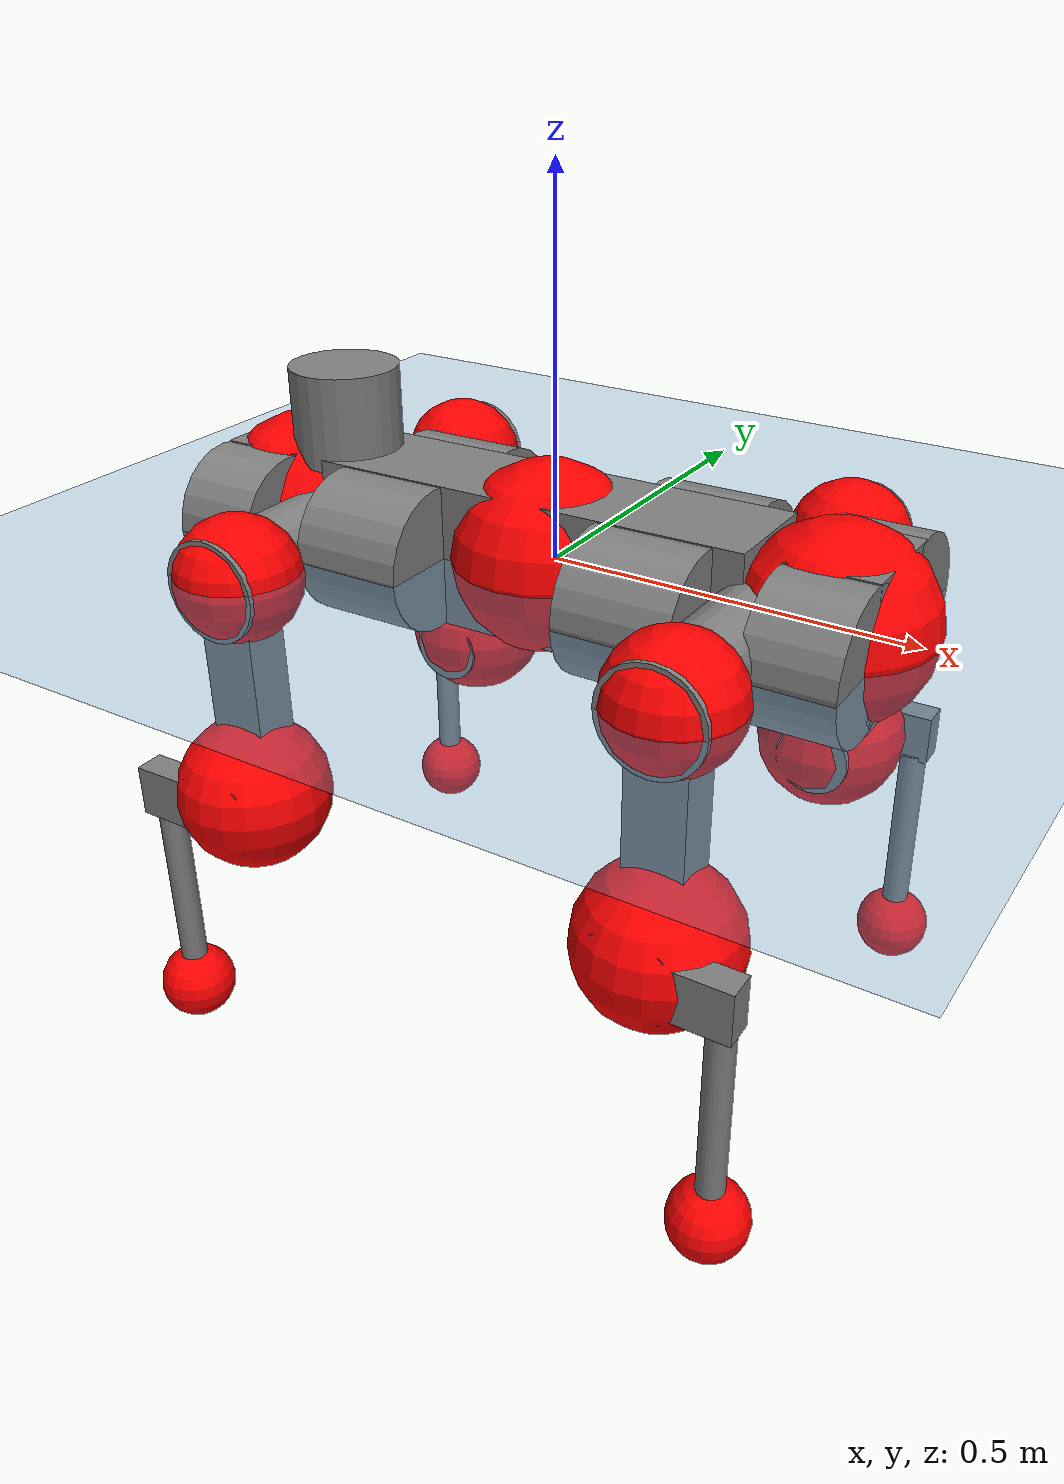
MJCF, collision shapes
<mujoco model="anymal_c">
  <compiler angle="radian" assetdir="assets" balanceinertia="true" inertiafromgeom="false"/>

  <option timestep="0.005" density="1.2" viscosity="2e-05"/>

  <size nkey="1"/>

  <visual>
    <quality shadowsize="8192"/>
    <map shadowclip="0.5"/>
  </visual>

  <default>
    <default class="/">
      <material specular="0" shininess="0.25"/>
      <geom contype="0" conaffinity="0" group="1" solref="-1000 -80"/>
      <site size="0.01 0.005 0.005" group="5"/>
      <general forcelimited="true" forcerange="-80 80" biastype="affine" gainprm="80" biasprm="0 -80 -2"/>
      <default class="anymal_c">
        <joint armature="0.01" damping="0.01" frictionloss="0.1"/>
        <default class="visual">
          <geom type="mesh" group="2"/>
          <default class="visual_zflip"/>
        </default>
        <default class="collision">
          <geom type="cylinder" group="3"/>
          <default class="foot">
            <geom size="0.03 0 0" type="sphere" condim="6" priority="1" friction="0.8 0.02 0.01" solimp="0.015 1 0.03"/>
          </default>
        </default>
      </default>
      <default class="reward_collision_sphere">
        <geom group="5" rgba="1 0 0 1"/>
      </default>
    </default>
  </default>

  <asset>
    <texture type="skybox" colorspace="auto" name="//unnamed_texture_0" builtin="gradient" rgb1="0.95 0.95 0.95" rgb2="0.95 0.95 0.95" width="100" height="600"/>
    <texture type="2d" colorspace="auto" name="texplane" builtin="checker" rgb1="0.345 0.575 0.748" rgb2="0.345 0.575 0.748" markrgb="1 1 1" width="512" height="512"/>
    <texture type="2d" colorspace="linear" name="base" file="base.png"/>
    <texture type="2d" colorspace="linear" name="top_shell" file="top_shell.png"/>
    <texture type="2d" colorspace="linear" name="bottom_shell" file="bottom_shell.png"/>
    <texture type="2d" colorspace="linear" name="remote" file="remote.png"/>
    <texture type="2d" colorspace="linear" name="hatch" file="hatch.png"/>
    <texture type="2d" colorspace="linear" name="handle" file="handle.png"/>
    <texture type="2d" colorspace="linear" name="face" file="face.png"/>
    <texture type="2d" colorspace="linear" name="battery" file="battery.png"/>
    <texture type="2d" colorspace="linear" name="lidar_cage" file="lidar_cage.png"/>
    <texture type="2d" colorspace="linear" name="depth_camera" file="depth_camera.png"/>
    <texture type="2d" colorspace="linear" name="wide_angle_camera" file="wide_angle_camera.png"/>
    <texture type="2d" colorspace="linear" name="lidar" file="lidar.png"/>
    <texture type="2d" colorspace="linear" name="drive" file="drive.png"/>
    <texture type="2d" colorspace="linear" name="hip_l" file="hip_l.png"/>
    <texture type="2d" colorspace="linear" name="shank_l" file="shank_l.png"/>
    <texture type="2d" colorspace="linear" name="foot" file="foot.png"/>
    <texture type="2d" colorspace="linear" name="thigh" file="thigh.png"/>
    <texture type="2d" colorspace="linear" name="shank_r" file="shank_r.png"/>
    <texture type="2d" colorspace="linear" name="hip_r" file="hip_r.png"/>
    <material name="MatPlane" class="/" texture="texplane" texuniform="true" texrepeat="2 2" specular="0.9" shininess="0.5"/>
    <material name="black_plastic" class="/" rgba="0.007 0.007 0.007 1"/>
    <material name="green" class="/" rgba="0.052 0.178 0.033 1"/>
    <material name="red" class="/" rgba="0.178 0.006 0.005 1"/>
    <material name="yellow" class="/" rgba="0.178 0.119 0.006 1"/>
    <material name="lwl" class="/" rgba="0.8 0.8 0.8 1"/>
    <material name="base" class="/" texture="base"/>
    <material name="top_shell" class="/" texture="top_shell"/>
    <material name="bottom_shell" class="/" texture="bottom_shell"/>
    <material name="hip_l" class="/" texture="hip_l"/>
    <material name="thigh" class="/" texture="thigh"/>
    <material name="shank_l" class="/" texture="shank_l"/>
    <material name="foot" class="/" texture="foot"/>
    <material name="hip_r" class="/" texture="hip_r"/>
    <material name="shank" class="/" texture="shank_r"/>
    <material name="hatch" class="/" texture="hatch"/>
    <material name="remote" class="/" texture="remote"/>
    <material name="handle" class="/" texture="handle"/>
    <material name="face" class="/" texture="face"/>
    <material name="depth_camera" class="/" texture="depth_camera"/>
    <material name="wide_angle_camera" class="/" texture="wide_angle_camera"/>
    <material name="battery" class="/" texture="battery"/>
    <material name="lidar_cage" class="/" texture="lidar_cage"/>
    <material name="lidar" class="/" texture="lidar"/>
    <material name="drive" class="/" texture="drive"/>
    <mesh name="base_0" class="/" file="base_0.obj"/>
    <mesh name="base_1" class="/" file="base_1.obj"/>
    <mesh name="base_2" class="/" file="base_2.obj"/>
    <mesh name="base_3" class="/" file="base_3.obj"/>
    <mesh name="base_4" class="/" file="base_4.obj"/>
    <mesh name="base_5" class="/" file="base_5.obj"/>
    <mesh name="top_shell" class="/" file="top_shell.obj"/>
    <mesh name="bottom_shell" class="/" file="bottom_shell.obj"/>
    <mesh name="remote" class="/" file="remote.obj"/>
    <mesh name="handle" class="/" file="handle.obj"/>
    <mesh name="face" class="/" file="face.obj"/>
    <mesh name="wide_angle_camera" class="/" file="wide_angle_camera.obj"/>
    <mesh name="depth_camera" class="/" file="depth_camera.obj"/>
    <mesh name="battery" class="/" file="battery.obj"/>
    <mesh name="lidar_cage" class="/" file="lidar_cage.obj"/>
    <mesh name="lidar" class="/" file="lidar.obj"/>
    <mesh name="drive" class="/" file="drive.obj"/>
    <mesh name="hip_l" class="/" file="hip_l.obj"/>
    <mesh name="thigh" class="/" file="thigh.obj"/>
    <mesh name="shank_l" class="/" file="shank_l.obj"/>
    <mesh name="foot" class="/" file="foot.obj"/>
    <mesh name="hip_r" class="/" file="hip_r.obj"/>
    <mesh name="hatch" class="/" file="hatch.obj"/>
    <mesh name="shank_r" class="/" file="shank_r.obj"/>
  </asset>

  <worldbody>
    <geom name="floor" class="/" size="100 100 0.125" type="plane" group="0" material="MatPlane"/>
    <light name="toplight_shadow" class="/" pos="0 0 5" dir="0.0990148 0.0990148 -0.990148" type="directional" ambient="0.04 0.04 0.04" diffuse="0.55 0.55 0.55" specular="0.12 0.12 0.12"/>
    <light name="toplight_fill" class="/" pos="0 0 5" dir="0.0990148 0.0990148 -0.990148" type="directional" castshadow="false" ambient="0.04 0.04 0.04" diffuse="0.3 0.3 0.3" specular="0.08 0.08 0.08"/>
    <body name="trunk" childclass="anymal_c" pos="-0.00968559 -0.00203978 0.00229353" quat="0.999991 0.000937407 -0.00275108 0.00293378">
      <inertial pos="0.0111878 -0.00209857 0.0519269" quat="0.496023 0.504246 0.498014 0.501676" mass="26.2495" diaginertia="0.344449 1.93799 0.304307"/>
      <joint name="//unnamed_joint_0" type="free" armature="0" damping="0" frictionloss="0"/>
      <geom name="//unnamed_geom_1" class="visual" material="green" mesh="base_0"/>
      <geom name="//unnamed_geom_2" class="visual" material="yellow" mesh="base_1"/>
      <geom name="//unnamed_geom_3" class="visual" material="red" mesh="base_2"/>
      <geom name="//unnamed_geom_4" class="visual" material="black_plastic" mesh="base_3"/>
      <geom name="//unnamed_geom_5" class="visual" material="lwl" mesh="base_4"/>
      <geom name="//unnamed_geom_6" class="visual" material="base" mesh="base_5"/>
      <geom name="trunk_1" class="collision" size="0.311645 0.0752247 0.0967175" type="box"/>
      <geom name="trunk_2" class="collision" size="0.0967175 0.0779113" pos="0.193189 0.088134 0" quat="0.707107 0 0.707107 0"/>
      <geom name="trunk_3" class="collision" size="0.0967175 0.0779113" pos="-0.193189 0.088134 0" quat="0.707107 0 0.707107 0"/>
      <geom name="trunk_4" class="collision" size="0.0967175 0.0779113" pos="0.193189 -0.088134 0" quat="0.707107 0 0.707107 0"/>
      <geom name="trunk_5" class="collision" size="0.0967175 0.0779113" pos="-0.193189 -0.088134 0" quat="0.707107 0 0.707107 0"/>
      <geom name="//unnamed_geom_12" class="visual" material="top_shell" mesh="top_shell"/>
      <geom name="//unnamed_geom_13" class="visual" material="bottom_shell" mesh="bottom_shell"/>
      <geom name="//unnamed_geom_14" class="visual" material="remote" mesh="remote"/>
      <geom name="//unnamed_geom_15" class="visual" material="handle" mesh="handle"/>
      <geom name="//unnamed_geom_16" class="visual" pos="0.36817 0 0" quat="1 0 0 0" material="face" mesh="face"/>
      <geom name="trunk_6" class="collision" size="0.0591051 0.0752247 0.0967175" pos="0.417023 0 0" type="box"/>
      <geom name="//unnamed_geom_18" class="collision" size="0.0967175 0.0591051" pos="0.417023 0.088134 0" quat="0.707107 0 0.707107 0"/>
      <geom name="//unnamed_geom_19" class="collision" size="0.0967175 0.0591051" pos="0.417023 -0.088134 0" quat="0.707107 0 0.707107 0"/>
      <geom name="//unnamed_geom_20" class="visual" pos="0.410058 0 -0.0328696" quat="0.965926 0 0.258819 0" material="depth_camera" mesh="depth_camera"/>
      <geom name="//unnamed_geom_21" class="visual" pos="0.45566 0 0.0161172" material="wide_angle_camera" mesh="wide_angle_camera"/>
      <geom name="//unnamed_geom_22" class="visual_zflip" pos="-0.36817 0 0" quat="0 0 0 1" material="face" mesh="face"/>
      <geom name="trunk_7" class="collision" size="0.0591051 0.0752247 0.0967175" pos="-0.417023 0 0" quat="0 0 0 1" type="box"/>
      <geom name="//unnamed_geom_24" class="collision" size="0.0967175 0.0591051" pos="-0.417023 -0.088134 0" quat="0 -0.707107 0 0.707107"/>
      <geom name="//unnamed_geom_25" class="collision" size="0.0967175 0.0591051" pos="-0.417023 0.088134 0" quat="0 -0.707107 0 0.707107"/>
      <geom name="//unnamed_geom_26" class="visual" pos="-0.410058 0 -0.0328696" quat="0 -0.258819 0 0.965926" material="depth_camera" mesh="depth_camera"/>
      <geom name="//unnamed_geom_27" class="visual_zflip" pos="-0.45566 0 0.0161172" quat="0 0 0 1" material="wide_angle_camera" mesh="wide_angle_camera"/>
      <geom name="//unnamed_geom_28" class="visual" material="battery" mesh="battery"/>
      <geom name="//unnamed_geom_29" class="visual" pos="0 0.101141 0.0298443" quat="0.683013 -0.183013 0.183013 0.683013" material="depth_camera" mesh="depth_camera"/>
      <geom name="//unnamed_geom_30" class="visual" pos="0 -0.101141 0.0298443" quat="0.683013 0.183013 0.183013 -0.683013" material="depth_camera" mesh="depth_camera"/>
      <geom name="//unnamed_geom_31" class="visual" pos="-0.323315 0 0.0791325" quat="1 0 0 0" material="lidar_cage" mesh="lidar_cage"/>
      <geom name="trunk_8" class="collision" size="0.0752247 0.0644783" pos="-0.323315 0 0.14373"/>
      <geom name="//unnamed_geom_33" class="visual" pos="-0.323315 0.000145689 0.153097" quat="0.707107 0 0 -0.707107" material="lidar" mesh="lidar"/>
      <geom name="//unnamed_geom_34" class="visual" pos="0.266379 0.130877 3.14684e-09" quat="0.258819 0.965926 0 0" material="drive" mesh="drive"/>
      <geom name="//unnamed_geom_35" class="visual" pos="0.266379 -0.130877 -3.14684e-09" quat="0.258819 -0.965926 0 0" material="drive" mesh="drive"/>
      <geom name="//unnamed_geom_36" class="visual" pos="-0.266379 0.130877 -3.14684e-09" quat="0 0 0.965926 -0.258819" material="drive" mesh="drive"/>
      <geom name="//unnamed_geom_37" class="visual" pos="-0.266379 -0.130877 3.14684e-09" quat="0 0 -0.965926 -0.258819" material="drive" mesh="drive"/>
      <geom name="//unnamed_geom_38" class="visual" pos="0.103034 0 0.0785942" quat="1 0 0 0" material="hatch" mesh="hatch"/>
      <geom name="//unnamed_geom_39" class="reward_collision_sphere" size="0.128957"/>
      <geom name="//unnamed_geom_40" class="reward_collision_sphere" size="0.128957" pos="0.399702 0 0"/>
      <geom name="//unnamed_geom_41" class="reward_collision_sphere" size="0.128957" pos="-0.399702 0 0"/>
      <site name="imu" pos="0.210847 -0.00522129 0.0107069" size="0.0107464"/>
      <camera name="track" pos="0 -2.51811 0" quat="0.707107 0.707107 0 0" mode="trackcom"/>
      <camera name="ego_camera" pos="0.399702 0 -0.0430653" quat="-0.5 -0.5 0.5 0.5"/>
      <body name="LF_HIP" pos="0.266594 0.13123 -0.00173551" quat="0.257996 0.966146 -0.000127669 0.000620055">
        <inertial pos="0.051254 -0.0138781 -0.0106223" quat="-0.127291 0.70709 -0.127006 0.683878" mass="3.58626" diaginertia="0.00287161 0.0151665 0.00474656"/>
        <joint name="LF_HAA" pos="0 0 0" axis="0.998891 -0.0374988 -0.0284753" stiffness="0.00288546" range="-0.903781 0.449727" armature="0.0111179" damping="0" frictionloss="0.106168"/>
        <geom name="//unnamed_geom_42" class="visual" pos="0 0.000185114 -3.04049e-05" quat="0.258819 -0.965926 0 0" material="hip_l" mesh="hip_l"/>
        <geom name="//unnamed_geom_43" class="visual" pos="0.0532048 -0.0692867 -0.0386533" quat="0.183013 -0.683013 0.683013 0.183013" material="drive" mesh="drive"/>
        <geom name="//unnamed_geom_44" class="collision" size="0.053732 0.0752247" pos="0.0532048 -0.0150581 -0.00743415" quat="-0.353553 -0.612372 0.612372 -0.353553"/>
        <body name="LF_THIGH" pos="0.0506551 -0.0912088 -0.0484032" quat="0.181619 -0.681024 0.685473 0.182615">
          <inertial pos="0.0222633 0.00431087 -0.256447" quat="0.993188 -0.00523465 -0.0796796 0.0848612" mass="3.95821" diaginertia="0.0172732 0.103437 0.00564102"/>
          <joint name="LF_HFE" pos="0 0 0" axis="0.999995 0.00238755 -0.00193608" stiffness="0.0490969" range="-3.18198 3.14952" armature="0.0116955" damping="0.0145048" frictionloss="0.111652"/>
          <geom name="//unnamed_geom_45" class="visual" pos="-0.00737807 -1.16261e-05 0" quat="0.707107 0 0 -0.707107" material="thigh" mesh="thigh"/>
          <geom name="//unnamed_geom_46" class="collision" size="0.0698515 0.0429856" pos="0.0355291 0 0" quat="0.5 0.5 -0.5 -0.5"/>
          <geom name="//unnamed_geom_47" class="collision" size="0.040299 0.0322392 0.151862" pos="0.0266468 0 -0.152143" quat="0.707107 0 0 -0.707107" type="box"/>
          <geom name="//unnamed_geom_48" class="visual" pos="0.0890892 0 -0.30684" quat="1 0 0 0" material="drive" mesh="drive"/>
          <geom name="//unnamed_geom_49" class="collision" size="0.053732 0.0752247" pos="0.0269133 0 -0.30684" quat="0.707107 0 0.707107 0"/>
          <geom name="//unnamed_geom_50" class="reward_collision_sphere" size="0.0859711" pos="0.0222057 0 0"/>
          <body name="LF_SHANK" pos="0.0914733 0.00817389 -0.310186" quat="0.999998 -0.000820192 0.000340304 0.00180965">
            <inertial pos="0.0113469 -0.0776473 -0.0914364" quat="0.99221 -0.121245 -0.00299882 -0.0284444" mass="0.71694" diaginertia="0.00513936 0.0242018 0.00141288"/>
            <joint name="LF_KFE" pos="0 0 0" axis="0.999995 0.00270348 -0.00164369" range="-2.97825 3.17971" armature="0.00940509" damping="0.039791" frictionloss="0.0918863"/>
            <geom name="//unnamed_geom_51" class="visual" pos="-0.00240583 -0.012828 0" quat="0.707107 0 0 -0.707107" material="shank_l" mesh="shank_l"/>
            <geom name="LF_kfe_act" class="collision" size="0.0644783 0.0214928" pos="0.0177645 0 0" quat="0.5 0.5 -0.5 -0.5"/>
            <geom name="//unnamed_geom_53" class="collision" size="0.0617907 0.0362691 0.0204181" pos="0.0177645 -0.0723945 0" quat="0.5 0.5 -0.5 -0.5" type="box"/>
            <geom name="//unnamed_geom_54" class="visual" pos="0.0115919 -0.114868 -0.36387" quat="0.382683 0 0 -0.92388" material="foot" mesh="foot"/>
            <geom name="LF_calf" class="collision" size="0.0188062 0.151795" pos="0.0115914 -0.110734 -0.181935" quat="0.707107 0 0 -0.707107"/>
            <geom name="LF_foot" class="foot" size="0.0202943" pos="0.0115914 -0.110734 -0.339645" quat="0.707107 0 0 -0.707107"/>
            <geom name="//unnamed_geom_57" class="reward_collision_sphere" size="0.107464" pos="-0.0444113 0 0"/>
            <geom name="//unnamed_geom_58" class="reward_collision_sphere" size="0.053732" pos="0.0115914 -0.110734 -0.339645"/>
            <site name="LF_foot" class="foot" pos="0.0115914 -0.110734 -0.339645" quat="0.707107 0 0 -0.707107" size="0.0107464"/>
          </body>
        </body>
      </body>
      <body name="RF_HIP" pos="0.268539 -0.131749 0.0083194" quat="0.257127 -0.966375 0.000832232 0.0022094">
        <inertial pos="0.047604 0.0267089 -0.00889784" quat="0.16061 0.687335 0.140632 0.694261" mass="3.50578" diaginertia="0.00361008 0.0161797 0.00522619"/>
        <joint name="RF_HAA" pos="0 0 0" axis="0.999884 -0.0147601 0.00367905" range="-0.504026 0.709816" armature="0.0107197" damping="0.0218494" frictionloss="0.144552"/>
        <geom name="//unnamed_geom_59" class="visual" pos="0 -0.000185113 -3.04048e-05" quat="0.258819 0.965926 0 0" material="hip_r" mesh="hip_r"/>
        <geom name="//unnamed_geom_60" class="visual" pos="0.0532048 0.0692867 -0.0386533" quat="0.183013 0.683013 0.683013 -0.183013" material="drive" mesh="drive"/>
        <geom name="//unnamed_geom_61" class="collision" size="0.053732 0.0752247" pos="0.0532048 0.0150581 -0.00743415" quat="-0.353553 0.612372 0.612372 0.353553"/>
        <body name="RF_THIGH" pos="0.0536892 0.100959 -0.0448854" quat="0.182763 0.683366 0.683019 -0.181917">
          <inertial pos="0.0241177 0.0057793 -0.266381" quat="0.993478 0.0125507 -0.0678881 0.0907505" mass="3.72947" diaginertia="0.0168042 0.0980587 0.00571772"/>
          <joint name="RF_HFE" pos="0 0 0" axis="0.999973 -0.00455699 -0.00570382" stiffness="0.0176524" range="-3.17941 3.01415" armature="0.0111658" damping="0.00724466" frictionloss="0.0971407"/>
          <geom name="//unnamed_geom_62" class="visual" pos="-0.00737807 -1.16261e-05 0" quat="0.707107 0 0 -0.707107" material="thigh" mesh="thigh"/>
          <geom name="//unnamed_geom_63" class="collision" size="0.0698515 0.0429856" pos="0.0355291 0 0" quat="0.5 0.5 0.5 0.5"/>
          <geom name="//unnamed_geom_64" class="collision" size="0.040299 0.0322392 0.151862" pos="0.0266468 0 -0.152143" quat="0.707107 0 0 0.707107" type="box"/>
          <geom name="//unnamed_geom_65" class="visual" pos="0.0890892 0 -0.30684" quat="1 0 0 0" material="drive" mesh="drive"/>
          <geom name="//unnamed_geom_66" class="collision" size="0.053732 0.0752247" pos="0.0269133 0 -0.30684" quat="0.707107 0 0.707107 0"/>
          <geom name="//unnamed_geom_67" class="reward_collision_sphere" size="0.0859711" pos="0.0222057 0 0"/>
          <body name="RF_SHANK" pos="0.0896042 0.0062491 -0.306491" quat="1 -5.32577e-06 1.4164e-05 5.16845e-05">
            <inertial pos="0.00456856 0.0791639 -0.0853513" quat="0.990163 0.134419 0.0320562 0.0219315" mass="0.707608" diaginertia="0.00562384 0.0289558 0.00171319"/>
            <joint name="RF_KFE" pos="0 0 0" axis="0.999056 -0.032536 0.0287733" stiffness="0.0345198" range="-3.0817 3.03912" armature="0.0110316" damping="0" frictionloss="0.115154"/>
            <geom name="//unnamed_geom_68" class="visual" pos="-0.00240581 0.012828 0" quat="0.707107 0 0 0.707107" material="shank" mesh="shank_r"/>
            <geom name="RF_kfe_act" class="collision" size="0.0644783 0.0214928" pos="0.0177645 0 0" quat="0.5 0.5 0.5 0.5"/>
            <geom name="//unnamed_geom_70" class="collision" size="0.0617907 0.0362691 0.0204181" pos="0.0177645 0.0723945 0" quat="0.5 0.5 0.5 0.5" type="box"/>
            <geom name="//unnamed_geom_71" class="visual" pos="0.0115908 0.114868 -0.36387" quat="0.382683 0 0 0.92388" material="foot" mesh="foot"/>
            <geom name="RF_calf" class="collision" size="0.0188062 0.151795" pos="0.0115914 0.110734 -0.181935" quat="0.707107 0 0 0.707107"/>
            <geom name="RF_foot" class="foot" size="0.0317783" pos="0.0115914 0.110734 -0.339645" quat="0.707107 0 0 0.707107"/>
            <geom name="//unnamed_geom_74" class="reward_collision_sphere" size="0.107464" pos="-0.0444113 0 0"/>
            <geom name="//unnamed_geom_75" class="reward_collision_sphere" size="0.053732" pos="0.0115914 0.110734 -0.339645"/>
            <site name="RF_foot" class="foot" pos="0.0115914 0.110734 -0.339645" quat="0.707107 0 0 0.707107" size="0.0107464"/>
          </body>
        </body>
      </body>
      <body name="LH_HIP" pos="-0.266302 0.131646 0.00543394" quat="-0.000173402 3.94645e-05 0.965751 -0.259472">
        <inertial pos="0.0492987 0.010482 -0.00351139" quat="0.121664 0.648167 0.155034 0.735555" mass="3.11862" diaginertia="0.00335851 0.015419 0.00433718"/>
        <joint name="LH_HAA" pos="0 0 0" axis="0.999992 0.00354816 0.0016287" range="-0.527271 0.794211" armature="0.0139258" damping="0.00727877" frictionloss="0.0666305"/>
        <geom name="//unnamed_geom_76" class="visual" pos="0 -0.000185113 -3.04048e-05" quat="-0.258819 -0.965926 0 0" material="hip_r" mesh="hip_r"/>
        <geom name="//unnamed_geom_77" class="visual" pos="0.0532048 0.0692867 -0.0386533" quat="0.183013 0.683013 0.683013 -0.183013" material="drive" mesh="drive"/>
        <geom name="//unnamed_geom_78" class="collision" size="0.053732 0.0752247" pos="0.0532048 0.0150581 -0.00743415" quat="-0.353553 0.612372 0.612372 0.353553"/>
        <body name="LH_THIGH" pos="0.0532294 0.0986603 -0.0526254" quat="0.183324 0.683312 0.682888 -0.182048">
          <inertial pos="0.0267922 0.000330625 -0.263075" quat="0.992535 -0.00275646 -0.0797992 0.0921931" mass="3.39696" diaginertia="0.0171639 0.0964607 0.00573108"/>
          <joint name="LH_HFE" pos="0 0 0" axis="0.999814 -0.00643244 -0.018194" range="-3.10306 3.18101" armature="0.0079248" damping="0.0229268" frictionloss="0.105911"/>
          <geom name="//unnamed_geom_79" class="visual" pos="-0.00737807 -1.16261e-05 0" quat="0.707107 0 0 -0.707107" material="thigh" mesh="thigh"/>
          <geom name="//unnamed_geom_80" class="collision" size="0.0698515 0.0429856" pos="0.0355291 0 0" quat="0.5 0.5 -0.5 -0.5"/>
          <geom name="//unnamed_geom_81" class="collision" size="0.040299 0.0322392 0.151862" pos="0.0266468 0 -0.152143" quat="0.707107 0 0 -0.707107" type="box"/>
          <geom name="//unnamed_geom_82" class="visual" pos="0.0890892 0 -0.30684" quat="1 0 0 0" material="drive" mesh="drive"/>
          <geom name="//unnamed_geom_83" class="collision" size="0.053732 0.0752247" pos="0.0269133 0 -0.30684" quat="0.707107 0 0.707107 0"/>
          <geom name="//unnamed_geom_84" class="reward_collision_sphere" size="0.0859711" pos="0.0222057 0 0"/>
          <body name="LH_SHANK" pos="0.0898239 -0.000267452 -0.298604" quat="1 -0.000206622 -0.000163778 0.000267573">
            <inertial pos="0.00565272 0.0678549 -0.0848757" quat="0.992194 0.118167 0.000746755 0.0398275" mass="0.721908" diaginertia="0.00579708 0.0297385 0.00179604"/>
            <joint name="LH_KFE" pos="0 0 0" axis="0.999981 0.00037577 -0.00617899" stiffness="0.0478662" range="-3.13685 3.09997" armature="0.0091179" damping="0.0277509" frictionloss="0.0592686"/>
            <geom name="//unnamed_geom_85" class="visual" pos="-0.00240581 0.012828 0" quat="-0.707107 0 0 -0.707107" material="shank" mesh="shank_r"/>
            <geom name="LH_kfe_act" class="collision" size="0.0644783 0.0214928" pos="0.0177645 0 0" quat="0.5 0.5 -0.5 -0.5"/>
            <geom name="//unnamed_geom_87" class="collision" size="0.0617907 0.0362691 0.0204181" pos="0.0177645 0.0723945 0" quat="0.5 0.5 -0.5 -0.5" type="box"/>
            <geom name="//unnamed_geom_88" class="visual" pos="0.0115908 0.114868 -0.36387" quat="-0.382683 0 0 -0.92388" material="foot" mesh="foot"/>
            <geom name="LH_calf" class="collision" size="0.0188062 0.151795" pos="0.0115914 0.110734 -0.181935" quat="0.707107 0 0 -0.707107"/>
            <geom name="LH_foot" class="foot" size="0.035702" pos="0.0115914 0.110734 -0.339645" quat="0.707107 0 0 -0.707107"/>
            <geom name="//unnamed_geom_91" class="reward_collision_sphere" size="0.107464" pos="-0.0444113 0 0"/>
            <geom name="//unnamed_geom_92" class="reward_collision_sphere" size="0.053732" pos="0.0115914 0.110734 -0.339645"/>
            <site name="LH_foot" class="foot" pos="0.0115914 0.110734 -0.339645" quat="0.707107 0 0 -0.707107" size="0.0107464"/>
          </body>
        </body>
      </body>
      <body name="RH_HIP" pos="-0.267134 -0.127926 0.00134051" quat="-0.00398778 0.00118525 -0.966256 -0.257551">
        <inertial pos="0.0412714 -0.0247284 6.66048e-06" quat="-0.113763 0.699396 -0.126486 0.694193" mass="3.41827" diaginertia="0.00317308 0.0151735 0.00462923"/>
        <joint name="RH_HAA" pos="0 0 0" axis="0.998894 -0.0172869 0.0437176" range="-0.737836 0.523979" armature="0.0120944" damping="0.00709311" frictionloss="0.113891"/>
        <geom name="//unnamed_geom_93" class="visual" pos="0 0.000185114 -3.04049e-05" quat="-0.258819 0.965926 0 0" material="hip_l" mesh="hip_l"/>
        <geom name="//unnamed_geom_94" class="visual" pos="0.0532048 -0.0692867 -0.0386533" quat="-0.183013 0.683013 -0.683013 -0.183013" material="drive" mesh="drive"/>
        <geom name="//unnamed_geom_95" class="collision" size="0.053732 0.0752247" pos="0.0532048 -0.0150581 -0.00743415" quat="0.353553 0.612372 -0.612372 0.353553"/>
        <body name="RH_THIGH" pos="0.0528854 -0.089076 -0.0360919" quat="-0.183064 0.682806 -0.683192 -0.183065">
          <inertial pos="0.0257854 0.000245928 -0.264201" quat="0.992699 -0.00542134 -0.0860035 0.0843909" mass="4.13065" diaginertia="0.0163676 0.089077 0.00603924"/>
          <joint name="RH_HFE" pos="0 0 0" axis="0.999985 -0.0032795 0.00436142" range="-3.15412 2.99929" armature="0.00967449" damping="0.0132341" frictionloss="0.113671"/>
          <geom name="//unnamed_geom_96" class="visual" pos="-0.00737807 -1.16261e-05 0" quat="0.707107 0 0 -0.707107" material="thigh" mesh="thigh"/>
          <geom name="//unnamed_geom_97" class="collision" size="0.0698515 0.0429856" pos="0.0355291 0 0" quat="0.5 0.5 0.5 0.5"/>
          <geom name="//unnamed_geom_98" class="collision" size="0.040299 0.0322392 0.151862" pos="0.0266468 0 -0.152143" quat="0.707107 0 0 0.707107" type="box"/>
          <geom name="//unnamed_geom_99" class="visual" pos="0.0890892 0 -0.30684" quat="1 0 0 0" material="drive" mesh="drive"/>
          <geom name="//unnamed_geom_100" class="collision" size="0.053732 0.0752247" pos="0.0269133 0 -0.30684" quat="0.707107 0 0.707107 0"/>
          <geom name="//unnamed_geom_101" class="reward_collision_sphere" size="0.0859711" pos="0.0222057 0 0"/>
          <body name="RH_SHANK" pos="0.0887634 0.00359825 -0.308956" quat="1 -0.000157427 -0.000267249 -0.000499063">
            <inertial pos="0.0101561 -0.0750762 -0.0886997" quat="0.99168 -0.123487 0.00807969 -0.0354456" mass="0.713335" diaginertia="0.00555389 0.0299051 0.00149183"/>
            <joint name="RH_KFE" pos="0 0 0" axis="0.99926 0.038439 0.00148156" range="-3.11711 3.11581" armature="0.0107355" damping="0" frictionloss="0.106175"/>
            <geom name="//unnamed_geom_102" class="visual" pos="-0.00240583 -0.012828 0" quat="0.707107 0 0 -0.707107" material="shank_l" mesh="shank_l"/>
            <geom name="RH_kfe_act" class="collision" size="0.0644783 0.0214928" pos="0.0177645 0 0" quat="0.5 0.5 0.5 0.5"/>
            <geom name="//unnamed_geom_104" class="collision" size="0.0617907 0.0362691 0.0204181" pos="0.0177645 -0.0723945 0" quat="0.5 0.5 0.5 0.5" type="box"/>
            <geom name="//unnamed_geom_105" class="visual" pos="0.0115919 -0.114868 -0.36387" quat="0.382683 0 0 -0.92388" material="foot" mesh="foot"/>
            <geom name="RH_calf" class="collision" size="0.0188062 0.151795" pos="0.0115914 -0.110734 -0.181935" quat="0.707107 0 0 0.707107"/>
            <geom name="RH_foot" class="foot" size="0.0407333" pos="0.0115914 -0.110734 -0.339645" quat="0.707107 0 0 0.707107"/>
            <geom name="//unnamed_geom_108" class="reward_collision_sphere" size="0.107464" pos="-0.0444113 0 0"/>
            <geom name="//unnamed_geom_109" class="reward_collision_sphere" size="0.053732" pos="0.0115914 -0.110734 -0.339645"/>
            <site name="RH_foot" class="foot" pos="0.0115914 -0.110734 -0.339645" quat="0.707107 0 0 0.707107" size="0.0107464"/>
          </body>
        </body>
      </body>
    </body>
  </worldbody>

  <contact>
    <pair class="/" geom1="floor" geom2="LF_foot" name="//unnamed_contact_0"/>
    <pair class="/" geom1="floor" geom2="RF_foot" name="//unnamed_contact_1"/>
    <pair class="/" geom1="floor" geom2="LH_foot" name="//unnamed_contact_2"/>
    <pair class="/" geom1="floor" geom2="RH_foot" name="//unnamed_contact_3"/>
  </contact>

  <actuator>
    <general name="LF_HAA" class="/" joint="LF_HAA" forcerange="-87.0335 87.0335" gainprm="78.9766" biasprm="0 -78.9766 -2.46327"/>
    <general name="LF_HFE" class="/" joint="LF_HFE" forcerange="-95.5907 95.5907" gainprm="78.9766" biasprm="0 -78.9766 -2.46327"/>
    <general name="LF_KFE" class="/" joint="LF_KFE" forcerange="-81.063 81.063" gainprm="78.9766" biasprm="0 -78.9766 -2.46327"/>
    <general name="RF_HAA" class="/" joint="RF_HAA" forcerange="-83.2569 83.2569" gainprm="78.9766" biasprm="0 -78.9766 -2.46327"/>
    <general name="RF_HFE" class="/" joint="RF_HFE" forcerange="-77.0962 77.0962" gainprm="78.9766" biasprm="0 -78.9766 -2.46327"/>
    <general name="RF_KFE" class="/" joint="RF_KFE" forcerange="-86.0712 86.0712" gainprm="78.9766" biasprm="0 -78.9766 -2.46327"/>
    <general name="LH_HAA" class="/" joint="LH_HAA" forcerange="-57.9981 57.9981" gainprm="78.9766" biasprm="0 -78.9766 -2.46327"/>
    <general name="LH_HFE" class="/" joint="LH_HFE" forcerange="-94.563 94.563" gainprm="78.9766" biasprm="0 -78.9766 -2.46327"/>
    <general name="LH_KFE" class="/" joint="LH_KFE" forcerange="-113.98 113.98" gainprm="78.9766" biasprm="0 -78.9766 -2.46327"/>
    <general name="RH_HAA" class="/" joint="RH_HAA" forcerange="-100.866 100.866" gainprm="78.9766" biasprm="0 -78.9766 -2.46327"/>
    <general name="RH_HFE" class="/" joint="RH_HFE" forcerange="-59.4392 59.4392" gainprm="78.9766" biasprm="0 -78.9766 -2.46327"/>
    <general name="RH_KFE" class="/" joint="RH_KFE" forcerange="-91.8321 91.8321" gainprm="78.9766" biasprm="0 -78.9766 -2.46327"/>
  </actuator>

  <sensor>
    <gyro site="imu" name="imu_angular_velocity"/>
    <velocimeter site="imu" name="imu_linear_velocity"/>
    <framelinvel objtype="site" objname="LF_foot" name="LF_foot_global_linear_velocity"/>
    <framelinvel objtype="site" objname="RF_foot" name="RF_foot_global_linear_velocity"/>
    <framelinvel objtype="site" objname="LH_foot" name="LH_foot_global_linear_velocity"/>
    <framelinvel objtype="site" objname="RH_foot" name="RH_foot_global_linear_velocity"/>
  </sensor>

  <keyframe>
    <key name="home" qpos="0 0 0.55 1 0 0 0 0 0.4 -0.8 0 -0.4 0.8 0 -0.4 0.8 0 0.4 -0.8"/>
  </keyframe>
</mujoco>
